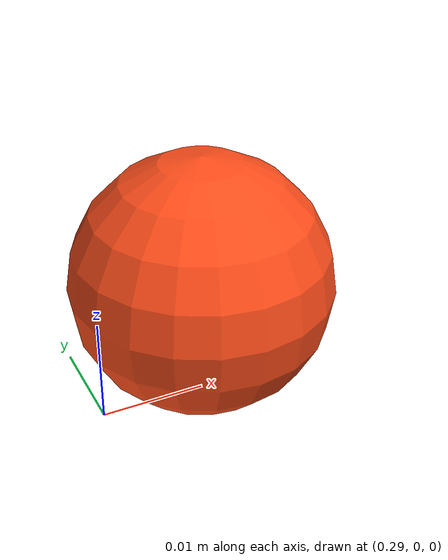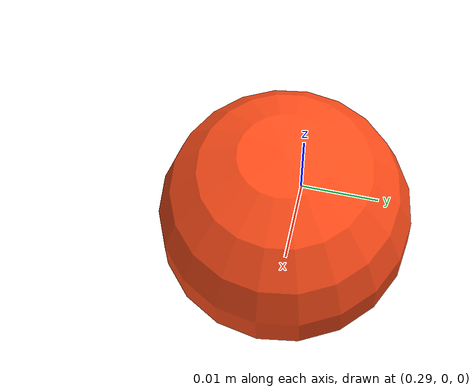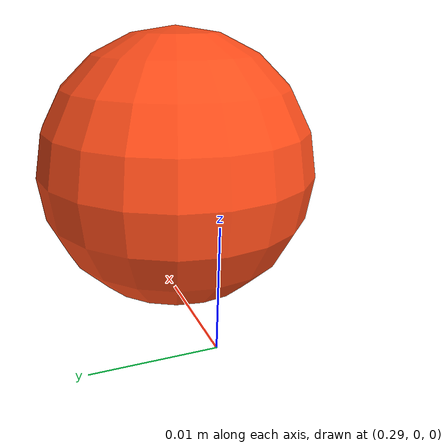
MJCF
<mujoco model="microduck_toss_ball">
    <compiler angle="radian" autolimits="true"/>

    <worldbody>
        <body name="ball" pos="0.3 0 0.012">
            <freejoint name="ball_free"/>
            <inertial pos="0 0 0" mass="0.003" diaginertia="1.728e-7 1.728e-7 1.728e-7"/>
            <geom type="sphere" name="ball_geom" size="0.012" rgba="1 0.3 0.1 1"
                  contype="2" conaffinity="1" friction="1.0 0.005 0.0001"
                  solref="0.03 1.0"/>
        </body>
    </worldbody>
</mujoco>
